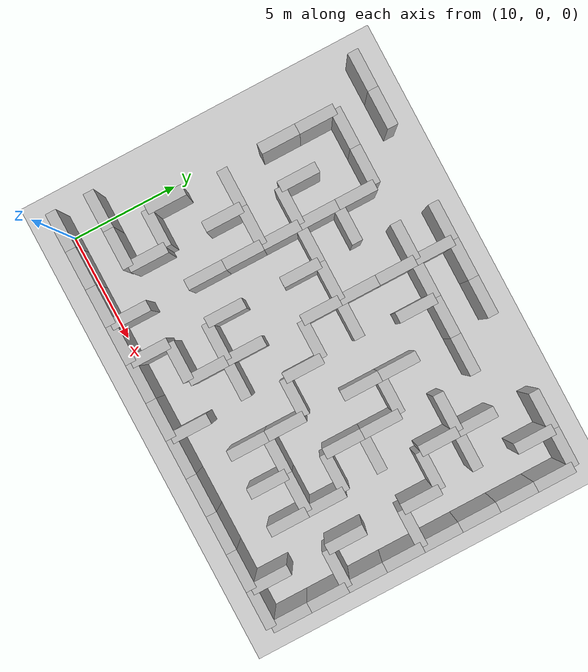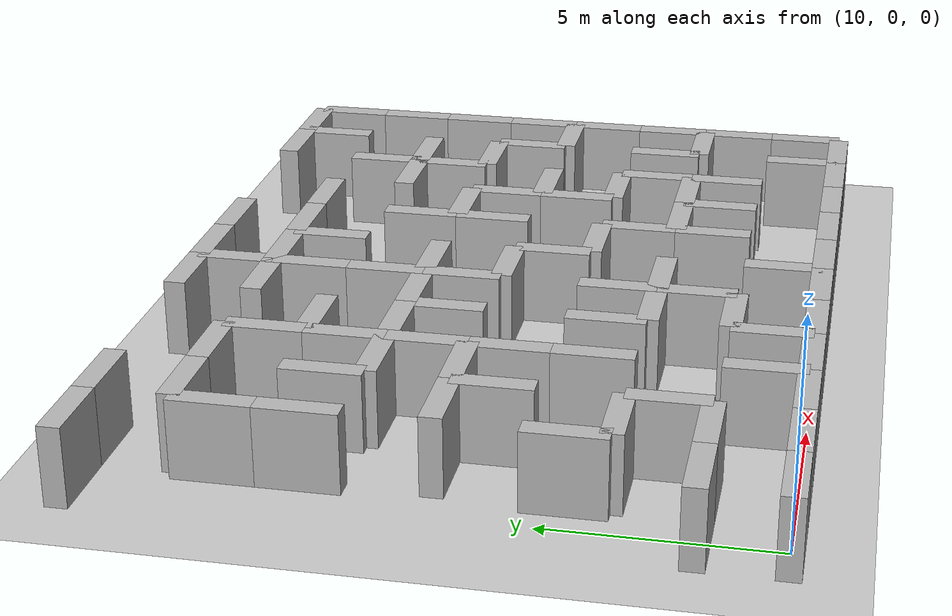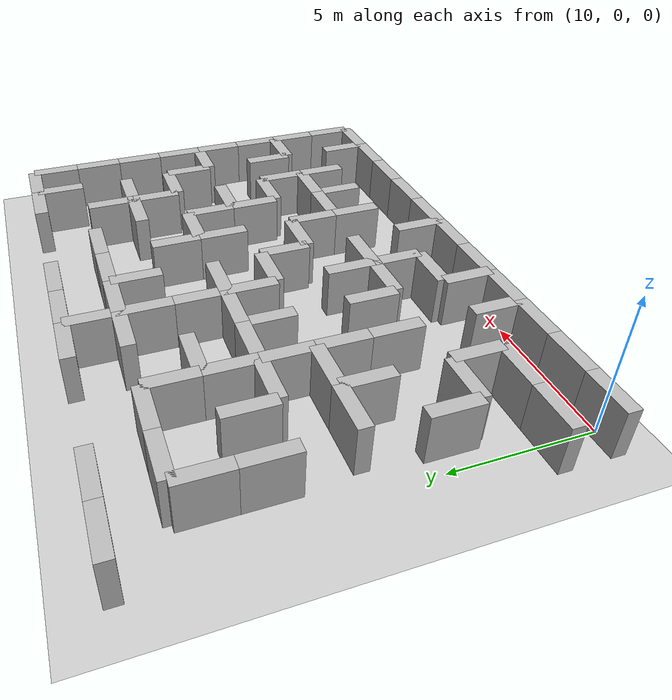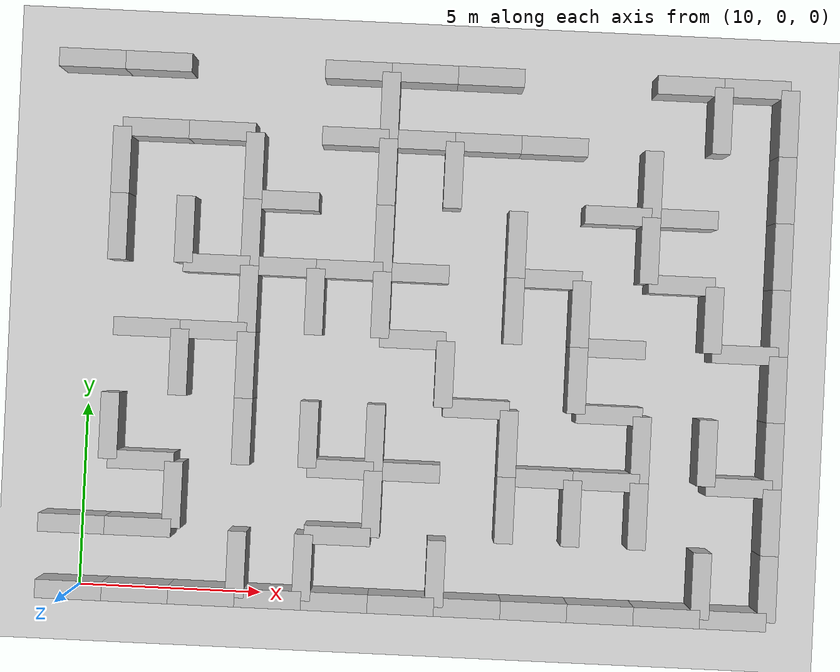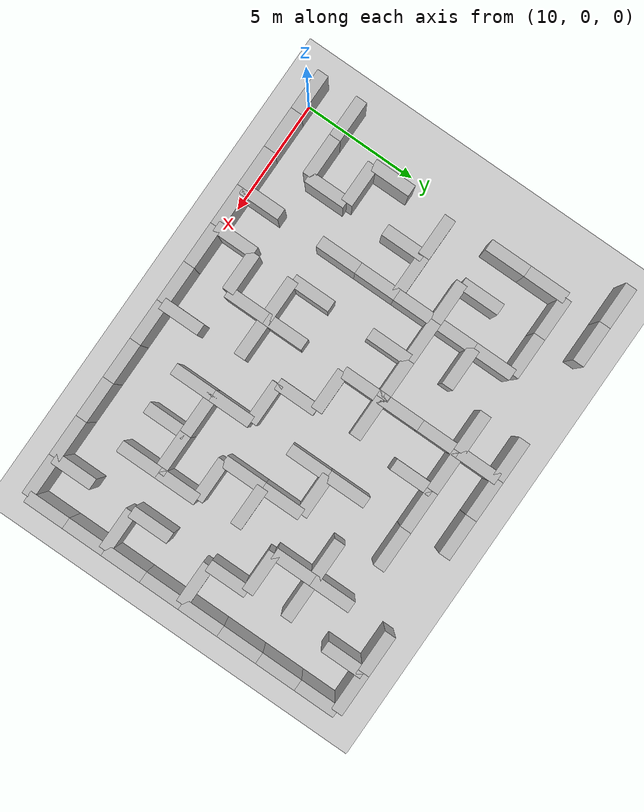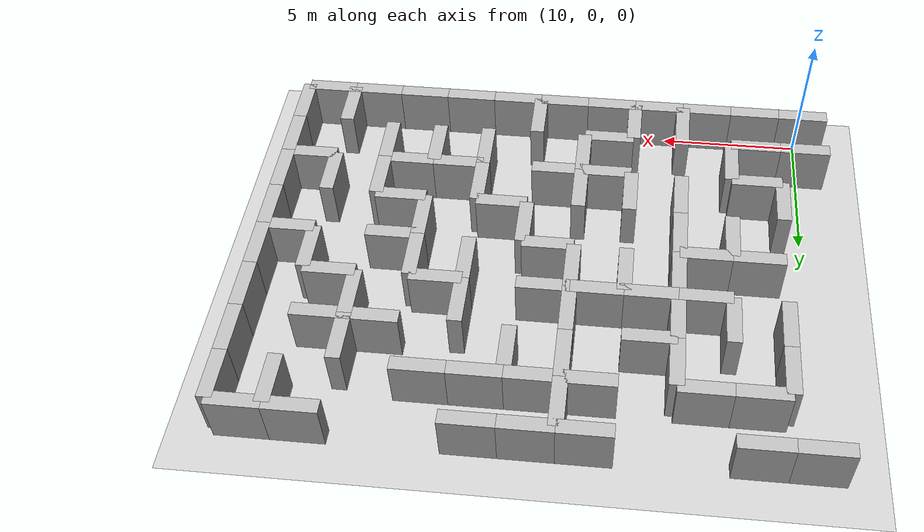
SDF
<sdf version="1.6">
 <world name="default">
  <model name="ground_plane">
   <static>1</static>
   <link name="link">
    <collision name="collision">
     <geometry><plane><normal>0 0 1</normal><size>100 100</size></plane></geometry>
     <surface><friction><ode><mu>100</mu><mu2>50</mu2></ode></friction></surface>
    </collision>
    <visual name="visual">
     <cast_shadows>0</cast_shadows>
     <geometry><plane><normal>0 0 1</normal><size>100 100</size></plane></geometry>
     <material>
      <script><uri>file://media/materials/scripts/gazebo.material</uri><name>Gazebo/Grey</name></script>
     </material>
    </visual>
   </link>
  </model>
  <model name="labyrinth_wall11">
   <pose>9.900000 0.000000 0.9 0 0 0.000000</pose>
   <link name="link">
    <inertial><mass>3.0</mass></inertial>
    <collision name="collision"><geometry><box><size>1.8 0.5 1.8</size></box></geometry></collision>
    <visual name="visual"><geometry><box><size>1.8 0.5 1.8</size></box></geometry></visual>
   </link>
   <static>true</static>
  </model>
  <model name="labyrinth_wall13">
   <pose>11.700000 0.000000 0.9 0 0 0.000000</pose>
   <link name="link">
    <inertial><mass>3.0</mass></inertial>
    <collision name="collision"><geometry><box><size>1.8 0.5 1.8</size></box></geometry></collision>
    <visual name="visual"><geometry><box><size>1.8 0.5 1.8</size></box></geometry></visual>
   </link>
   <static>true</static>
  </model>
  <model name="labyrinth_wall15">
   <pose>13.500000 0.000000 0.9 0 0 0.000000</pose>
   <link name="link">
    <inertial><mass>3.0</mass></inertial>
    <collision name="collision"><geometry><box><size>1.8 0.5 1.8</size></box></geometry></collision>
    <visual name="visual"><geometry><box><size>1.8 0.5 1.8</size></box></geometry></visual>
   </link>
   <static>true</static>
  </model>
  <model name="labyrinth_wall16">
   <pose>14.400000 0.900000 0.9 0 0 1.570796</pose>
   <link name="link">
    <inertial><mass>3.0</mass></inertial>
    <collision name="collision"><geometry><box><size>1.8 0.5 1.8</size></box></geometry></collision>
    <visual name="visual"><geometry><box><size>1.8 0.5 1.8</size></box></geometry></visual>
   </link>
   <static>true</static>
  </model>
  <model name="labyrinth_wall17">
   <pose>15.300000 0.000000 0.9 0 0 0.000000</pose>
   <link name="link">
    <inertial><mass>3.0</mass></inertial>
    <collision name="collision"><geometry><box><size>1.8 0.5 1.8</size></box></geometry></collision>
    <visual name="visual"><geometry><box><size>1.8 0.5 1.8</size></box></geometry></visual>
   </link>
   <static>true</static>
  </model>
  <model name="labyrinth_wall18">
   <pose>16.200001 0.900000 0.9 0 0 1.570796</pose>
   <link name="link">
    <inertial><mass>3.0</mass></inertial>
    <collision name="collision"><geometry><box><size>1.8 0.5 1.8</size></box></geometry></collision>
    <visual name="visual"><geometry><box><size>1.8 0.5 1.8</size></box></geometry></visual>
   </link>
   <static>true</static>
  </model>
  <model name="labyrinth_wall19">
   <pose>17.100000 0.000000 0.9 0 0 0.000000</pose>
   <link name="link">
    <inertial><mass>3.0</mass></inertial>
    <collision name="collision"><geometry><box><size>1.8 0.5 1.8</size></box></geometry></collision>
    <visual name="visual"><geometry><box><size>1.8 0.5 1.8</size></box></geometry></visual>
   </link>
   <static>true</static>
  </model>
  <model name="labyrinth_wall21">
   <pose>18.900000 0.000000 0.9 0 0 0.000000</pose>
   <link name="link">
    <inertial><mass>3.0</mass></inertial>
    <collision name="collision"><geometry><box><size>1.8 0.5 1.8</size></box></geometry></collision>
    <visual name="visual"><geometry><box><size>1.8 0.5 1.8</size></box></geometry></visual>
   </link>
   <static>true</static>
  </model>
  <model name="labyrinth_wall22">
   <pose>19.799999 0.900000 0.9 0 0 1.570796</pose>
   <link name="link">
    <inertial><mass>3.0</mass></inertial>
    <collision name="collision"><geometry><box><size>1.8 0.5 1.8</size></box></geometry></collision>
    <visual name="visual"><geometry><box><size>1.8 0.5 1.8</size></box></geometry></visual>
   </link>
   <static>true</static>
  </model>
  <model name="labyrinth_wall23">
   <pose>20.700001 0.000000 0.9 0 0 0.000000</pose>
   <link name="link">
    <inertial><mass>3.0</mass></inertial>
    <collision name="collision"><geometry><box><size>1.8 0.5 1.8</size></box></geometry></collision>
    <visual name="visual"><geometry><box><size>1.8 0.5 1.8</size></box></geometry></visual>
   </link>
   <static>true</static>
  </model>
  <model name="labyrinth_wall25">
   <pose>22.500000 0.000000 0.9 0 0 0.000000</pose>
   <link name="link">
    <inertial><mass>3.0</mass></inertial>
    <collision name="collision"><geometry><box><size>1.8 0.5 1.8</size></box></geometry></collision>
    <visual name="visual"><geometry><box><size>1.8 0.5 1.8</size></box></geometry></visual>
   </link>
   <static>true</static>
  </model>
  <model name="labyrinth_wall27">
   <pose>24.299999 0.000000 0.9 0 0 0.000000</pose>
   <link name="link">
    <inertial><mass>3.0</mass></inertial>
    <collision name="collision"><geometry><box><size>1.8 0.5 1.8</size></box></geometry></collision>
    <visual name="visual"><geometry><box><size>1.8 0.5 1.8</size></box></geometry></visual>
   </link>
   <static>true</static>
  </model>
  <model name="labyrinth_wall29">
   <pose>26.100000 0.000000 0.9 0 0 0.000000</pose>
   <link name="link">
    <inertial><mass>3.0</mass></inertial>
    <collision name="collision"><geometry><box><size>1.8 0.5 1.8</size></box></geometry></collision>
    <visual name="visual"><geometry><box><size>1.8 0.5 1.8</size></box></geometry></visual>
   </link>
   <static>true</static>
  </model>
  <model name="labyrinth_wall30">
   <pose>27.000000 0.900000 0.9 0 0 1.570796</pose>
   <link name="link">
    <inertial><mass>3.0</mass></inertial>
    <collision name="collision"><geometry><box><size>1.8 0.5 1.8</size></box></geometry></collision>
    <visual name="visual"><geometry><box><size>1.8 0.5 1.8</size></box></geometry></visual>
   </link>
   <static>true</static>
  </model>
  <model name="labyrinth_wall31">
   <pose>27.900000 0.000000 0.9 0 0 0.000000</pose>
   <link name="link">
    <inertial><mass>3.0</mass></inertial>
    <collision name="collision"><geometry><box><size>1.8 0.5 1.8</size></box></geometry></collision>
    <visual name="visual"><geometry><box><size>1.8 0.5 1.8</size></box></geometry></visual>
   </link>
   <static>true</static>
  </model>
  <model name="labyrinth_wall32">
   <pose>28.799999 0.900000 0.9 0 0 1.570796</pose>
   <link name="link">
    <inertial><mass>3.0</mass></inertial>
    <collision name="collision"><geometry><box><size>1.8 0.5 1.8</size></box></geometry></collision>
    <visual name="visual"><geometry><box><size>1.8 0.5 1.8</size></box></geometry></visual>
   </link>
   <static>true</static>
  </model>
  <model name="labyrinth_wall44">
   <pose>9.900000 1.800000 0.9 0 0 0.000000</pose>
   <link name="link">
    <inertial><mass>3.0</mass></inertial>
    <collision name="collision"><geometry><box><size>1.8 0.5 1.8</size></box></geometry></collision>
    <visual name="visual"><geometry><box><size>1.8 0.5 1.8</size></box></geometry></visual>
   </link>
   <static>true</static>
  </model>
  <model name="labyrinth_wall46">
   <pose>11.700000 1.800000 0.9 0 0 0.000000</pose>
   <link name="link">
    <inertial><mass>3.0</mass></inertial>
    <collision name="collision"><geometry><box><size>1.8 0.5 1.8</size></box></geometry></collision>
    <visual name="visual"><geometry><box><size>1.8 0.5 1.8</size></box></geometry></visual>
   </link>
   <static>true</static>
  </model>
  <model name="labyrinth_wall47">
   <pose>12.600000 2.700000 0.9 0 0 1.570796</pose>
   <link name="link">
    <inertial><mass>3.0</mass></inertial>
    <collision name="collision"><geometry><box><size>1.8 0.5 1.8</size></box></geometry></collision>
    <visual name="visual"><geometry><box><size>1.8 0.5 1.8</size></box></geometry></visual>
   </link>
   <static>true</static>
  </model>
  <model name="labyrinth_wall52">
   <pose>17.100000 1.800000 0.9 0 0 0.000000</pose>
   <link name="link">
    <inertial><mass>3.0</mass></inertial>
    <collision name="collision"><geometry><box><size>1.8 0.5 1.8</size></box></geometry></collision>
    <visual name="visual"><geometry><box><size>1.8 0.5 1.8</size></box></geometry></visual>
   </link>
   <static>true</static>
  </model>
  <model name="labyrinth_wall53">
   <pose>18.000000 2.700000 0.9 0 0 1.570796</pose>
   <link name="link">
    <inertial><mass>3.0</mass></inertial>
    <collision name="collision"><geometry><box><size>1.8 0.5 1.8</size></box></geometry></collision>
    <visual name="visual"><geometry><box><size>1.8 0.5 1.8</size></box></geometry></visual>
   </link>
   <static>true</static>
  </model>
  <model name="labyrinth_wall57">
   <pose>21.600000 2.700000 0.9 0 0 1.570796</pose>
   <link name="link">
    <inertial><mass>3.0</mass></inertial>
    <collision name="collision"><geometry><box><size>1.8 0.5 1.8</size></box></geometry></collision>
    <visual name="visual"><geometry><box><size>1.8 0.5 1.8</size></box></geometry></visual>
   </link>
   <static>true</static>
  </model>
  <model name="labyrinth_wall59">
   <pose>23.400000 2.700000 0.9 0 0 1.570796</pose>
   <link name="link">
    <inertial><mass>3.0</mass></inertial>
    <collision name="collision"><geometry><box><size>1.8 0.5 1.8</size></box></geometry></collision>
    <visual name="visual"><geometry><box><size>1.8 0.5 1.8</size></box></geometry></visual>
   </link>
   <static>true</static>
  </model>
  <model name="labyrinth_wall61">
   <pose>25.200001 2.700000 0.9 0 0 1.570796</pose>
   <link name="link">
    <inertial><mass>3.0</mass></inertial>
    <collision name="collision"><geometry><box><size>1.8 0.5 1.8</size></box></geometry></collision>
    <visual name="visual"><geometry><box><size>1.8 0.5 1.8</size></box></geometry></visual>
   </link>
   <static>true</static>
  </model>
  <model name="labyrinth_wall65">
   <pose>28.799999 2.700000 0.9 0 0 1.570796</pose>
   <link name="link">
    <inertial><mass>3.0</mass></inertial>
    <collision name="collision"><geometry><box><size>1.8 0.5 1.8</size></box></geometry></collision>
    <visual name="visual"><geometry><box><size>1.8 0.5 1.8</size></box></geometry></visual>
   </link>
   <static>true</static>
  </model>
  <model name="labyrinth_wall78">
   <pose>10.800000 4.500000 0.9 0 0 1.570796</pose>
   <link name="link">
    <inertial><mass>3.0</mass></inertial>
    <collision name="collision"><geometry><box><size>1.8 0.5 1.8</size></box></geometry></collision>
    <visual name="visual"><geometry><box><size>1.8 0.5 1.8</size></box></geometry></visual>
   </link>
   <static>true</static>
  </model>
  <model name="labyrinth_wall79">
   <pose>11.700000 3.600000 0.9 0 0 0.000000</pose>
   <link name="link">
    <inertial><mass>3.0</mass></inertial>
    <collision name="collision"><geometry><box><size>1.8 0.5 1.8</size></box></geometry></collision>
    <visual name="visual"><geometry><box><size>1.8 0.5 1.8</size></box></geometry></visual>
   </link>
   <static>true</static>
  </model>
  <model name="labyrinth_wall82">
   <pose>14.400000 4.500000 0.9 0 0 1.570796</pose>
   <link name="link">
    <inertial><mass>3.0</mass></inertial>
    <collision name="collision"><geometry><box><size>1.8 0.5 1.8</size></box></geometry></collision>
    <visual name="visual"><geometry><box><size>1.8 0.5 1.8</size></box></geometry></visual>
   </link>
   <static>true</static>
  </model>
  <model name="labyrinth_wall84">
   <pose>16.200001 4.500000 0.9 0 0 1.570796</pose>
   <link name="link">
    <inertial><mass>3.0</mass></inertial>
    <collision name="collision"><geometry><box><size>1.8 0.5 1.8</size></box></geometry></collision>
    <visual name="visual"><geometry><box><size>1.8 0.5 1.8</size></box></geometry></visual>
   </link>
   <static>true</static>
  </model>
  <model name="labyrinth_wall85">
   <pose>17.100000 3.600000 0.9 0 0 0.000000</pose>
   <link name="link">
    <inertial><mass>3.0</mass></inertial>
    <collision name="collision"><geometry><box><size>1.8 0.5 1.8</size></box></geometry></collision>
    <visual name="visual"><geometry><box><size>1.8 0.5 1.8</size></box></geometry></visual>
   </link>
   <static>true</static>
  </model>
  <model name="labyrinth_wall86">
   <pose>18.000000 4.500000 0.9 0 0 1.570796</pose>
   <link name="link">
    <inertial><mass>3.0</mass></inertial>
    <collision name="collision"><geometry><box><size>1.8 0.5 1.8</size></box></geometry></collision>
    <visual name="visual"><geometry><box><size>1.8 0.5 1.8</size></box></geometry></visual>
   </link>
   <static>true</static>
  </model>
  <model name="labyrinth_wall87">
   <pose>18.900000 3.600000 0.9 0 0 0.000000</pose>
   <link name="link">
    <inertial><mass>3.0</mass></inertial>
    <collision name="collision"><geometry><box><size>1.8 0.5 1.8</size></box></geometry></collision>
    <visual name="visual"><geometry><box><size>1.8 0.5 1.8</size></box></geometry></visual>
   </link>
   <static>true</static>
  </model>
  <model name="labyrinth_wall90">
   <pose>21.600000 4.500000 0.9 0 0 1.570796</pose>
   <link name="link">
    <inertial><mass>3.0</mass></inertial>
    <collision name="collision"><geometry><box><size>1.8 0.5 1.8</size></box></geometry></collision>
    <visual name="visual"><geometry><box><size>1.8 0.5 1.8</size></box></geometry></visual>
   </link>
   <static>true</static>
  </model>
  <model name="labyrinth_wall91">
   <pose>22.500000 3.600000 0.9 0 0 0.000000</pose>
   <link name="link">
    <inertial><mass>3.0</mass></inertial>
    <collision name="collision"><geometry><box><size>1.8 0.5 1.8</size></box></geometry></collision>
    <visual name="visual"><geometry><box><size>1.8 0.5 1.8</size></box></geometry></visual>
   </link>
   <static>true</static>
  </model>
  <model name="labyrinth_wall93">
   <pose>24.299999 3.600000 0.9 0 0 0.000000</pose>
   <link name="link">
    <inertial><mass>3.0</mass></inertial>
    <collision name="collision"><geometry><box><size>1.8 0.5 1.8</size></box></geometry></collision>
    <visual name="visual"><geometry><box><size>1.8 0.5 1.8</size></box></geometry></visual>
   </link>
   <static>true</static>
  </model>
  <model name="labyrinth_wall94">
   <pose>25.200001 4.500000 0.9 0 0 1.570796</pose>
   <link name="link">
    <inertial><mass>3.0</mass></inertial>
    <collision name="collision"><geometry><box><size>1.8 0.5 1.8</size></box></geometry></collision>
    <visual name="visual"><geometry><box><size>1.8 0.5 1.8</size></box></geometry></visual>
   </link>
   <static>true</static>
  </model>
  <model name="labyrinth_wall96">
   <pose>27.000000 4.500000 0.9 0 0 1.570796</pose>
   <link name="link">
    <inertial><mass>3.0</mass></inertial>
    <collision name="collision"><geometry><box><size>1.8 0.5 1.8</size></box></geometry></collision>
    <visual name="visual"><geometry><box><size>1.8 0.5 1.8</size></box></geometry></visual>
   </link>
   <static>true</static>
  </model>
  <model name="labyrinth_wall97">
   <pose>27.900000 3.600000 0.9 0 0 0.000000</pose>
   <link name="link">
    <inertial><mass>3.0</mass></inertial>
    <collision name="collision"><geometry><box><size>1.8 0.5 1.8</size></box></geometry></collision>
    <visual name="visual"><geometry><box><size>1.8 0.5 1.8</size></box></geometry></visual>
   </link>
   <static>true</static>
  </model>
  <model name="labyrinth_wall98">
   <pose>28.799999 4.500000 0.9 0 0 1.570796</pose>
   <link name="link">
    <inertial><mass>3.0</mass></inertial>
    <collision name="collision"><geometry><box><size>1.8 0.5 1.8</size></box></geometry></collision>
    <visual name="visual"><geometry><box><size>1.8 0.5 1.8</size></box></geometry></visual>
   </link>
   <static>true</static>
  </model>
  <model name="labyrinth_wall113">
   <pose>12.600000 6.300000 0.9 0 0 1.570796</pose>
   <link name="link">
    <inertial><mass>3.0</mass></inertial>
    <collision name="collision"><geometry><box><size>1.8 0.5 1.8</size></box></geometry></collision>
    <visual name="visual"><geometry><box><size>1.8 0.5 1.8</size></box></geometry></visual>
   </link>
   <static>true</static>
  </model>
  <model name="labyrinth_wall115">
   <pose>14.400000 6.300000 0.9 0 0 1.570796</pose>
   <link name="link">
    <inertial><mass>3.0</mass></inertial>
    <collision name="collision"><geometry><box><size>1.8 0.5 1.8</size></box></geometry></collision>
    <visual name="visual"><geometry><box><size>1.8 0.5 1.8</size></box></geometry></visual>
   </link>
   <static>true</static>
  </model>
  <model name="labyrinth_wall121">
   <pose>19.799999 6.300000 0.9 0 0 1.570796</pose>
   <link name="link">
    <inertial><mass>3.0</mass></inertial>
    <collision name="collision"><geometry><box><size>1.8 0.5 1.8</size></box></geometry></collision>
    <visual name="visual"><geometry><box><size>1.8 0.5 1.8</size></box></geometry></visual>
   </link>
   <static>true</static>
  </model>
  <model name="labyrinth_wall122">
   <pose>20.700001 5.400000 0.9 0 0 0.000000</pose>
   <link name="link">
    <inertial><mass>3.0</mass></inertial>
    <collision name="collision"><geometry><box><size>1.8 0.5 1.8</size></box></geometry></collision>
    <visual name="visual"><geometry><box><size>1.8 0.5 1.8</size></box></geometry></visual>
   </link>
   <static>true</static>
  </model>
  <model name="labyrinth_wall125">
   <pose>23.400000 6.300000 0.9 0 0 1.570796</pose>
   <link name="link">
    <inertial><mass>3.0</mass></inertial>
    <collision name="collision"><geometry><box><size>1.8 0.5 1.8</size></box></geometry></collision>
    <visual name="visual"><geometry><box><size>1.8 0.5 1.8</size></box></geometry></visual>
   </link>
   <static>true</static>
  </model>
  <model name="labyrinth_wall126">
   <pose>24.299999 5.400000 0.9 0 0 0.000000</pose>
   <link name="link">
    <inertial><mass>3.0</mass></inertial>
    <collision name="collision"><geometry><box><size>1.8 0.5 1.8</size></box></geometry></collision>
    <visual name="visual"><geometry><box><size>1.8 0.5 1.8</size></box></geometry></visual>
   </link>
   <static>true</static>
  </model>
  <model name="labyrinth_wall131">
   <pose>28.799999 6.300000 0.9 0 0 1.570796</pose>
   <link name="link">
    <inertial><mass>3.0</mass></inertial>
    <collision name="collision"><geometry><box><size>1.8 0.5 1.8</size></box></geometry></collision>
    <visual name="visual"><geometry><box><size>1.8 0.5 1.8</size></box></geometry></visual>
   </link>
   <static>true</static>
  </model>
  <model name="labyrinth_wall145">
   <pose>11.700000 7.200000 0.9 0 0 0.000000</pose>
   <link name="link">
    <inertial><mass>3.0</mass></inertial>
    <collision name="collision"><geometry><box><size>1.8 0.5 1.8</size></box></geometry></collision>
    <visual name="visual"><geometry><box><size>1.8 0.5 1.8</size></box></geometry></visual>
   </link>
   <static>true</static>
  </model>
  <model name="labyrinth_wall147">
   <pose>13.500000 7.200000 0.9 0 0 0.000000</pose>
   <link name="link">
    <inertial><mass>3.0</mass></inertial>
    <collision name="collision"><geometry><box><size>1.8 0.5 1.8</size></box></geometry></collision>
    <visual name="visual"><geometry><box><size>1.8 0.5 1.8</size></box></geometry></visual>
   </link>
   <static>true</static>
  </model>
  <model name="labyrinth_wall148">
   <pose>14.400000 8.100000 0.9 0 0 1.570796</pose>
   <link name="link">
    <inertial><mass>3.0</mass></inertial>
    <collision name="collision"><geometry><box><size>1.8 0.5 1.8</size></box></geometry></collision>
    <visual name="visual"><geometry><box><size>1.8 0.5 1.8</size></box></geometry></visual>
   </link>
   <static>true</static>
  </model>
  <model name="labyrinth_wall150">
   <pose>16.200001 8.100000 0.9 0 0 1.570796</pose>
   <link name="link">
    <inertial><mass>3.0</mass></inertial>
    <collision name="collision"><geometry><box><size>1.8 0.5 1.8</size></box></geometry></collision>
    <visual name="visual"><geometry><box><size>1.8 0.5 1.8</size></box></geometry></visual>
   </link>
   <static>true</static>
  </model>
  <model name="labyrinth_wall152">
   <pose>18.000000 8.100000 0.9 0 0 1.570796</pose>
   <link name="link">
    <inertial><mass>3.0</mass></inertial>
    <collision name="collision"><geometry><box><size>1.8 0.5 1.8</size></box></geometry></collision>
    <visual name="visual"><geometry><box><size>1.8 0.5 1.8</size></box></geometry></visual>
   </link>
   <static>true</static>
  </model>
  <model name="labyrinth_wall153">
   <pose>18.900000 7.200000 0.9 0 0 0.000000</pose>
   <link name="link">
    <inertial><mass>3.0</mass></inertial>
    <collision name="collision"><geometry><box><size>1.8 0.5 1.8</size></box></geometry></collision>
    <visual name="visual"><geometry><box><size>1.8 0.5 1.8</size></box></geometry></visual>
   </link>
   <static>true</static>
  </model>
  <model name="labyrinth_wall156">
   <pose>21.600000 8.100000 0.9 0 0 1.570796</pose>
   <link name="link">
    <inertial><mass>3.0</mass></inertial>
    <collision name="collision"><geometry><box><size>1.8 0.5 1.8</size></box></geometry></collision>
    <visual name="visual"><geometry><box><size>1.8 0.5 1.8</size></box></geometry></visual>
   </link>
   <static>true</static>
  </model>
  <model name="labyrinth_wall158">
   <pose>23.400000 8.100000 0.9 0 0 1.570796</pose>
   <link name="link">
    <inertial><mass>3.0</mass></inertial>
    <collision name="collision"><geometry><box><size>1.8 0.5 1.8</size></box></geometry></collision>
    <visual name="visual"><geometry><box><size>1.8 0.5 1.8</size></box></geometry></visual>
   </link>
   <static>true</static>
  </model>
  <model name="labyrinth_wall159">
   <pose>24.299999 7.200000 0.9 0 0 0.000000</pose>
   <link name="link">
    <inertial><mass>3.0</mass></inertial>
    <collision name="collision"><geometry><box><size>1.8 0.5 1.8</size></box></geometry></collision>
    <visual name="visual"><geometry><box><size>1.8 0.5 1.8</size></box></geometry></visual>
   </link>
   <static>true</static>
  </model>
  <model name="labyrinth_wall162">
   <pose>27.000000 8.100000 0.9 0 0 1.570796</pose>
   <link name="link">
    <inertial><mass>3.0</mass></inertial>
    <collision name="collision"><geometry><box><size>1.8 0.5 1.8</size></box></geometry></collision>
    <visual name="visual"><geometry><box><size>1.8 0.5 1.8</size></box></geometry></visual>
   </link>
   <static>true</static>
  </model>
  <model name="labyrinth_wall163">
   <pose>27.900000 7.200000 0.9 0 0 0.000000</pose>
   <link name="link">
    <inertial><mass>3.0</mass></inertial>
    <collision name="collision"><geometry><box><size>1.8 0.5 1.8</size></box></geometry></collision>
    <visual name="visual"><geometry><box><size>1.8 0.5 1.8</size></box></geometry></visual>
   </link>
   <static>true</static>
  </model>
  <model name="labyrinth_wall164">
   <pose>28.799999 8.100000 0.9 0 0 1.570796</pose>
   <link name="link">
    <inertial><mass>3.0</mass></inertial>
    <collision name="collision"><geometry><box><size>1.8 0.5 1.8</size></box></geometry></collision>
    <visual name="visual"><geometry><box><size>1.8 0.5 1.8</size></box></geometry></visual>
   </link>
   <static>true</static>
  </model>
  <model name="labyrinth_wall177">
   <pose>10.800000 9.900000 0.9 0 0 1.570796</pose>
   <link name="link">
    <inertial><mass>3.0</mass></inertial>
    <collision name="collision"><geometry><box><size>1.8 0.5 1.8</size></box></geometry></collision>
    <visual name="visual"><geometry><box><size>1.8 0.5 1.8</size></box></geometry></visual>
   </link>
   <static>true</static>
  </model>
  <model name="labyrinth_wall179">
   <pose>12.600000 9.900000 0.9 0 0 1.570796</pose>
   <link name="link">
    <inertial><mass>3.0</mass></inertial>
    <collision name="collision"><geometry><box><size>1.8 0.5 1.8</size></box></geometry></collision>
    <visual name="visual"><geometry><box><size>1.8 0.5 1.8</size></box></geometry></visual>
   </link>
   <static>true</static>
  </model>
  <model name="labyrinth_wall180">
   <pose>13.500000 9.000000 0.9 0 0 0.000000</pose>
   <link name="link">
    <inertial><mass>3.0</mass></inertial>
    <collision name="collision"><geometry><box><size>1.8 0.5 1.8</size></box></geometry></collision>
    <visual name="visual"><geometry><box><size>1.8 0.5 1.8</size></box></geometry></visual>
   </link>
   <static>true</static>
  </model>
  <model name="labyrinth_wall181">
   <pose>14.400000 9.900000 0.9 0 0 1.570796</pose>
   <link name="link">
    <inertial><mass>3.0</mass></inertial>
    <collision name="collision"><geometry><box><size>1.8 0.5 1.8</size></box></geometry></collision>
    <visual name="visual"><geometry><box><size>1.8 0.5 1.8</size></box></geometry></visual>
   </link>
   <static>true</static>
  </model>
  <model name="labyrinth_wall182">
   <pose>15.300000 9.000000 0.9 0 0 0.000000</pose>
   <link name="link">
    <inertial><mass>3.0</mass></inertial>
    <collision name="collision"><geometry><box><size>1.8 0.5 1.8</size></box></geometry></collision>
    <visual name="visual"><geometry><box><size>1.8 0.5 1.8</size></box></geometry></visual>
   </link>
   <static>true</static>
  </model>
  <model name="labyrinth_wall184">
   <pose>17.100000 9.000000 0.9 0 0 0.000000</pose>
   <link name="link">
    <inertial><mass>3.0</mass></inertial>
    <collision name="collision"><geometry><box><size>1.8 0.5 1.8</size></box></geometry></collision>
    <visual name="visual"><geometry><box><size>1.8 0.5 1.8</size></box></geometry></visual>
   </link>
   <static>true</static>
  </model>
  <model name="labyrinth_wall185">
   <pose>18.000000 9.900000 0.9 0 0 1.570796</pose>
   <link name="link">
    <inertial><mass>3.0</mass></inertial>
    <collision name="collision"><geometry><box><size>1.8 0.5 1.8</size></box></geometry></collision>
    <visual name="visual"><geometry><box><size>1.8 0.5 1.8</size></box></geometry></visual>
   </link>
   <static>true</static>
  </model>
  <model name="labyrinth_wall186">
   <pose>18.900000 9.000000 0.9 0 0 0.000000</pose>
   <link name="link">
    <inertial><mass>3.0</mass></inertial>
    <collision name="collision"><geometry><box><size>1.8 0.5 1.8</size></box></geometry></collision>
    <visual name="visual"><geometry><box><size>1.8 0.5 1.8</size></box></geometry></visual>
   </link>
   <static>true</static>
  </model>
  <model name="labyrinth_wall189">
   <pose>21.600000 9.900000 0.9 0 0 1.570796</pose>
   <link name="link">
    <inertial><mass>3.0</mass></inertial>
    <collision name="collision"><geometry><box><size>1.8 0.5 1.8</size></box></geometry></collision>
    <visual name="visual"><geometry><box><size>1.8 0.5 1.8</size></box></geometry></visual>
   </link>
   <static>true</static>
  </model>
  <model name="labyrinth_wall190">
   <pose>22.500000 9.000000 0.9 0 0 0.000000</pose>
   <link name="link">
    <inertial><mass>3.0</mass></inertial>
    <collision name="collision"><geometry><box><size>1.8 0.5 1.8</size></box></geometry></collision>
    <visual name="visual"><geometry><box><size>1.8 0.5 1.8</size></box></geometry></visual>
   </link>
   <static>true</static>
  </model>
  <model name="labyrinth_wall193">
   <pose>25.200001 9.900000 0.9 0 0 1.570796</pose>
   <link name="link">
    <inertial><mass>3.0</mass></inertial>
    <collision name="collision"><geometry><box><size>1.8 0.5 1.8</size></box></geometry></collision>
    <visual name="visual"><geometry><box><size>1.8 0.5 1.8</size></box></geometry></visual>
   </link>
   <static>true</static>
  </model>
  <model name="labyrinth_wall194">
   <pose>26.100000 9.000000 0.9 0 0 0.000000</pose>
   <link name="link">
    <inertial><mass>3.0</mass></inertial>
    <collision name="collision"><geometry><box><size>1.8 0.5 1.8</size></box></geometry></collision>
    <visual name="visual"><geometry><box><size>1.8 0.5 1.8</size></box></geometry></visual>
   </link>
   <static>true</static>
  </model>
  <model name="labyrinth_wall197">
   <pose>28.799999 9.900000 0.9 0 0 1.570796</pose>
   <link name="link">
    <inertial><mass>3.0</mass></inertial>
    <collision name="collision"><geometry><box><size>1.8 0.5 1.8</size></box></geometry></collision>
    <visual name="visual"><geometry><box><size>1.8 0.5 1.8</size></box></geometry></visual>
   </link>
   <static>true</static>
  </model>
  <model name="labyrinth_wall210">
   <pose>10.800000 11.700000 0.9 0 0 1.570796</pose>
   <link name="link">
    <inertial><mass>3.0</mass></inertial>
    <collision name="collision"><geometry><box><size>1.8 0.5 1.8</size></box></geometry></collision>
    <visual name="visual"><geometry><box><size>1.8 0.5 1.8</size></box></geometry></visual>
   </link>
   <static>true</static>
  </model>
  <model name="labyrinth_wall214">
   <pose>14.400000 11.700000 0.9 0 0 1.570796</pose>
   <link name="link">
    <inertial><mass>3.0</mass></inertial>
    <collision name="collision"><geometry><box><size>1.8 0.5 1.8</size></box></geometry></collision>
    <visual name="visual"><geometry><box><size>1.8 0.5 1.8</size></box></geometry></visual>
   </link>
   <static>true</static>
  </model>
  <model name="labyrinth_wall215">
   <pose>15.300000 10.800000 0.9 0 0 0.000000</pose>
   <link name="link">
    <inertial><mass>3.0</mass></inertial>
    <collision name="collision"><geometry><box><size>1.8 0.5 1.8</size></box></geometry></collision>
    <visual name="visual"><geometry><box><size>1.8 0.5 1.8</size></box></geometry></visual>
   </link>
   <static>true</static>
  </model>
  <model name="labyrinth_wall218">
   <pose>18.000000 11.700000 0.9 0 0 1.570796</pose>
   <link name="link">
    <inertial><mass>3.0</mass></inertial>
    <collision name="collision"><geometry><box><size>1.8 0.5 1.8</size></box></geometry></collision>
    <visual name="visual"><geometry><box><size>1.8 0.5 1.8</size></box></geometry></visual>
   </link>
   <static>true</static>
  </model>
  <model name="labyrinth_wall220">
   <pose>19.799999 11.700000 0.9 0 0 1.570796</pose>
   <link name="link">
    <inertial><mass>3.0</mass></inertial>
    <collision name="collision"><geometry><box><size>1.8 0.5 1.8</size></box></geometry></collision>
    <visual name="visual"><geometry><box><size>1.8 0.5 1.8</size></box></geometry></visual>
   </link>
   <static>true</static>
  </model>
  <model name="labyrinth_wall225">
   <pose>24.299999 10.800000 0.9 0 0 0.000000</pose>
   <link name="link">
    <inertial><mass>3.0</mass></inertial>
    <collision name="collision"><geometry><box><size>1.8 0.5 1.8</size></box></geometry></collision>
    <visual name="visual"><geometry><box><size>1.8 0.5 1.8</size></box></geometry></visual>
   </link>
   <static>true</static>
  </model>
  <model name="labyrinth_wall226">
   <pose>25.200001 11.700000 0.9 0 0 1.570796</pose>
   <link name="link">
    <inertial><mass>3.0</mass></inertial>
    <collision name="collision"><geometry><box><size>1.8 0.5 1.8</size></box></geometry></collision>
    <visual name="visual"><geometry><box><size>1.8 0.5 1.8</size></box></geometry></visual>
   </link>
   <static>true</static>
  </model>
  <model name="labyrinth_wall227">
   <pose>26.100000 10.800000 0.9 0 0 0.000000</pose>
   <link name="link">
    <inertial><mass>3.0</mass></inertial>
    <collision name="collision"><geometry><box><size>1.8 0.5 1.8</size></box></geometry></collision>
    <visual name="visual"><geometry><box><size>1.8 0.5 1.8</size></box></geometry></visual>
   </link>
   <static>true</static>
  </model>
  <model name="labyrinth_wall230">
   <pose>28.799999 11.700000 0.9 0 0 1.570796</pose>
   <link name="link">
    <inertial><mass>3.0</mass></inertial>
    <collision name="collision"><geometry><box><size>1.8 0.5 1.8</size></box></geometry></collision>
    <visual name="visual"><geometry><box><size>1.8 0.5 1.8</size></box></geometry></visual>
   </link>
   <static>true</static>
  </model>
  <model name="labyrinth_wall244">
   <pose>11.700000 12.600000 0.9 0 0 0.000000</pose>
   <link name="link">
    <inertial><mass>3.0</mass></inertial>
    <collision name="collision"><geometry><box><size>1.8 0.5 1.8</size></box></geometry></collision>
    <visual name="visual"><geometry><box><size>1.8 0.5 1.8</size></box></geometry></visual>
   </link>
   <static>true</static>
  </model>
  <model name="labyrinth_wall246">
   <pose>13.500000 12.600000 0.9 0 0 0.000000</pose>
   <link name="link">
    <inertial><mass>3.0</mass></inertial>
    <collision name="collision"><geometry><box><size>1.8 0.5 1.8</size></box></geometry></collision>
    <visual name="visual"><geometry><box><size>1.8 0.5 1.8</size></box></geometry></visual>
   </link>
   <static>true</static>
  </model>
  <model name="labyrinth_wall250">
   <pose>17.100000 12.600000 0.9 0 0 0.000000</pose>
   <link name="link">
    <inertial><mass>3.0</mass></inertial>
    <collision name="collision"><geometry><box><size>1.8 0.5 1.8</size></box></geometry></collision>
    <visual name="visual"><geometry><box><size>1.8 0.5 1.8</size></box></geometry></visual>
   </link>
   <static>true</static>
  </model>
  <model name="labyrinth_wall251">
   <pose>18.000000 13.500000 0.9 0 0 1.570796</pose>
   <link name="link">
    <inertial><mass>3.0</mass></inertial>
    <collision name="collision"><geometry><box><size>1.8 0.5 1.8</size></box></geometry></collision>
    <visual name="visual"><geometry><box><size>1.8 0.5 1.8</size></box></geometry></visual>
   </link>
   <static>true</static>
  </model>
  <model name="labyrinth_wall252">
   <pose>18.900000 12.600000 0.9 0 0 0.000000</pose>
   <link name="link">
    <inertial><mass>3.0</mass></inertial>
    <collision name="collision"><geometry><box><size>1.8 0.5 1.8</size></box></geometry></collision>
    <visual name="visual"><geometry><box><size>1.8 0.5 1.8</size></box></geometry></visual>
   </link>
   <static>true</static>
  </model>
  <model name="labyrinth_wall254">
   <pose>20.700001 12.600000 0.9 0 0 0.000000</pose>
   <link name="link">
    <inertial><mass>3.0</mass></inertial>
    <collision name="collision"><geometry><box><size>1.8 0.5 1.8</size></box></geometry></collision>
    <visual name="visual"><geometry><box><size>1.8 0.5 1.8</size></box></geometry></visual>
   </link>
   <static>true</static>
  </model>
  <model name="labyrinth_wall256">
   <pose>22.500000 12.600000 0.9 0 0 0.000000</pose>
   <link name="link">
    <inertial><mass>3.0</mass></inertial>
    <collision name="collision"><geometry><box><size>1.8 0.5 1.8</size></box></geometry></collision>
    <visual name="visual"><geometry><box><size>1.8 0.5 1.8</size></box></geometry></visual>
   </link>
   <static>true</static>
  </model>
  <model name="labyrinth_wall261">
   <pose>27.000000 13.500000 0.9 0 0 1.570796</pose>
   <link name="link">
    <inertial><mass>3.0</mass></inertial>
    <collision name="collision"><geometry><box><size>1.8 0.5 1.8</size></box></geometry></collision>
    <visual name="visual"><geometry><box><size>1.8 0.5 1.8</size></box></geometry></visual>
   </link>
   <static>true</static>
  </model>
  <model name="labyrinth_wall263">
   <pose>28.799999 13.500000 0.9 0 0 1.570796</pose>
   <link name="link">
    <inertial><mass>3.0</mass></inertial>
    <collision name="collision"><geometry><box><size>1.8 0.5 1.8</size></box></geometry></collision>
    <visual name="visual"><geometry><box><size>1.8 0.5 1.8</size></box></geometry></visual>
   </link>
   <static>true</static>
  </model>
  <model name="labyrinth_wall275">
   <pose>9.900000 14.400000 0.9 0 0 0.000000</pose>
   <link name="link">
    <inertial><mass>3.0</mass></inertial>
    <collision name="collision"><geometry><box><size>1.8 0.5 1.8</size></box></geometry></collision>
    <visual name="visual"><geometry><box><size>1.8 0.5 1.8</size></box></geometry></visual>
   </link>
   <static>true</static>
  </model>
  <model name="labyrinth_wall277">
   <pose>11.700000 14.400000 0.9 0 0 0.000000</pose>
   <link name="link">
    <inertial><mass>3.0</mass></inertial>
    <collision name="collision"><geometry><box><size>1.8 0.5 1.8</size></box></geometry></collision>
    <visual name="visual"><geometry><box><size>1.8 0.5 1.8</size></box></geometry></visual>
   </link>
   <static>true</static>
  </model>
  <model name="labyrinth_wall283">
   <pose>17.100000 14.400000 0.9 0 0 0.000000</pose>
   <link name="link">
    <inertial><mass>3.0</mass></inertial>
    <collision name="collision"><geometry><box><size>1.8 0.5 1.8</size></box></geometry></collision>
    <visual name="visual"><geometry><box><size>1.8 0.5 1.8</size></box></geometry></visual>
   </link>
   <static>true</static>
  </model>
  <model name="labyrinth_wall285">
   <pose>18.900000 14.400000 0.9 0 0 0.000000</pose>
   <link name="link">
    <inertial><mass>3.0</mass></inertial>
    <collision name="collision"><geometry><box><size>1.8 0.5 1.8</size></box></geometry></collision>
    <visual name="visual"><geometry><box><size>1.8 0.5 1.8</size></box></geometry></visual>
   </link>
   <static>true</static>
  </model>
  <model name="labyrinth_wall287">
   <pose>20.700001 14.400000 0.9 0 0 0.000000</pose>
   <link name="link">
    <inertial><mass>3.0</mass></inertial>
    <collision name="collision"><geometry><box><size>1.8 0.5 1.8</size></box></geometry></collision>
    <visual name="visual"><geometry><box><size>1.8 0.5 1.8</size></box></geometry></visual>
   </link>
   <static>true</static>
  </model>
  <model name="labyrinth_wall293">
   <pose>26.100000 14.400000 0.9 0 0 0.000000</pose>
   <link name="link">
    <inertial><mass>3.0</mass></inertial>
    <collision name="collision"><geometry><box><size>1.8 0.5 1.8</size></box></geometry></collision>
    <visual name="visual"><geometry><box><size>1.8 0.5 1.8</size></box></geometry></visual>
   </link>
   <static>true</static>
  </model>
  <model name="labyrinth_wall295">
   <pose>27.900000 14.400000 0.9 0 0 0.000000</pose>
   <link name="link">
    <inertial><mass>3.0</mass></inertial>
    <collision name="collision"><geometry><box><size>1.8 0.5 1.8</size></box></geometry></collision>
    <visual name="visual"><geometry><box><size>1.8 0.5 1.8</size></box></geometry></visual>
   </link>
   <static>true</static>
  </model>
 </world>
</sdf>
